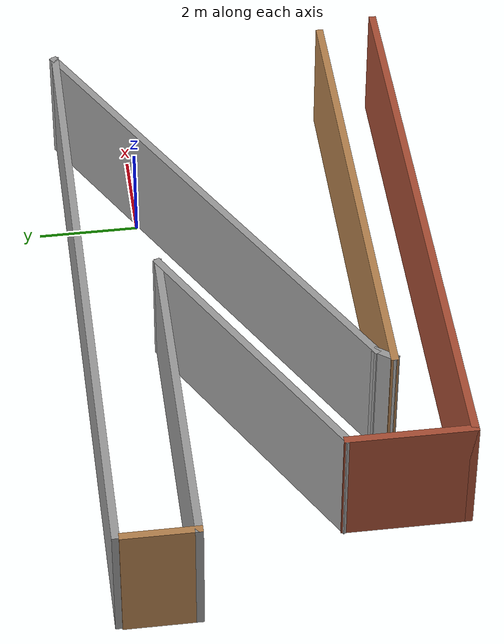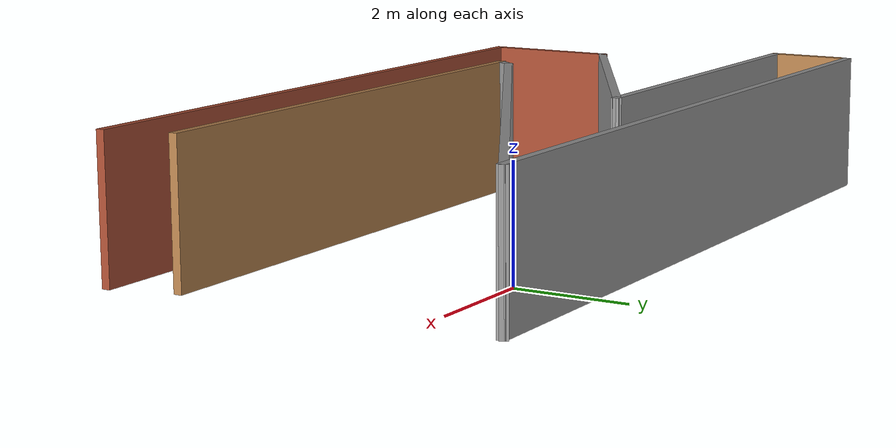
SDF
<?xml version='1.0'?>
<sdf version='1.6'>
  <model name='Z'>
    <pose frame=''>-3.66701 -1.98202 0 0 -0 0</pose>
    <link name='Wall_29'>
      <collision name='Wall_29_Collision'>
        <geometry>
          <box>
            <size>10.75 0.15 2.5</size>
          </box>
        </geometry>
        <pose frame=''>0 0 1.25 0 -0 0</pose>
      </collision>
      <visual name='Wall_29_Visual'>
        <pose frame=''>0 0 1.25 0 -0 0</pose>
        <geometry>
          <box>
            <size>10.75 0.15 2.5</size>
          </box>
        </geometry>
        <material>
          <script>
            <uri>file://media/materials/scripts/gazebo.material</uri>
            <name>Gazebo/Grey</name>
          </script>
          <ambient>1 1 1 1</ambient>
        </material>
      </visual>
      <pose frame=''>1.73324 0.721531 0 0 -0 0.523599</pose>
    </link>
    <link name='Wall_31'>
      <collision name='Wall_31_Collision'>
        <geometry>
          <box>
            <size>13.25 0.15 2.5</size>
          </box>
        </geometry>
        <pose frame=''>0 0 1.25 0 -0 0</pose>
      </collision>
      <visual name='Wall_31_Visual'>
        <pose frame=''>0 0 1.25 0 -0 0</pose>
        <geometry>
          <box>
            <size>13.25 0.15 2.5</size>
          </box>
        </geometry>
        <material>
          <script>
            <uri>file://media/materials/scripts/gazebo.material</uri>
            <name>Gazebo/Grey</name>
          </script>
          <ambient>1 1 1 1</ambient>
        </material>
      </visual>
      <pose frame=''>-0.238681 3.3571 0 0 -0 3.14159</pose>
    </link>
    <link name='Wall_34'>
      <collision name='Wall_34_Collision'>
        <geometry>
          <box>
            <size>9.75 0.15 2.5</size>
          </box>
        </geometry>
        <pose frame=''>0 0 1.25 0 -0 0</pose>
      </collision>
      <visual name='Wall_34_Visual'>
        <pose frame=''>0 0 1.25 0 -0 0</pose>
        <geometry>
          <box>
            <size>9.75 0.15 2.5</size>
          </box>
        </geometry>
        <material>
          <script>
            <uri>file://media/materials/scripts/gazebo.material</uri>
            <name>Gazebo/Wood</name>
          </script>
          <ambient>1 1 1 1</ambient>
        </material>
      </visual>
      <pose frame=''>1.72401 -2.22898 0 0 -0 3.14159</pose>
    </link>
    <link name='Wall_35'>
      <collision name='Wall_35_Collision'>
        <geometry>
          <box>
            <size>0.521928 0.15 2.5</size>
          </box>
        </geometry>
        <pose frame=''>0 0 1.25 0 -0 0</pose>
      </collision>
      <visual name='Wall_35_Visual'>
        <pose frame=''>0 0 1.25 0 -0 0</pose>
        <geometry>
          <box>
            <size>0.521928 0.15 2.5</size>
          </box>
        </geometry>
        <material>
          <script>
            <uri>file://media/materials/scripts/gazebo.material</uri>
            <name>Gazebo/Grey</name>
          </script>
          <ambient>1 1 1 1</ambient>
        </material>
      </visual>
      <pose frame=''>-2.96634 -2.07873 0 0 -0 0.940389</pose>
    </link>
    <link name='Wall_37'>
      <collision name='Wall_37_Collision'>
        <geometry>
          <box>
            <size>12 0.15 2.5</size>
          </box>
        </geometry>
        <pose frame=''>0 0 1.25 0 -0 0</pose>
      </collision>
      <visual name='Wall_37_Visual'>
        <pose frame=''>0 0 1.25 0 -0 0</pose>
        <geometry>
          <box>
            <size>12 0.15 2.5</size>
          </box>
        </geometry>
        <material>
          <script>
            <uri>file://media/materials/scripts/gazebo.material</uri>
            <name>Gazebo/Bricks</name>
          </script>
          <ambient>1 1 1 1</ambient>
        </material>
      </visual>
      <pose frame=''>0.892012 -3.39898 0 0 -0 3.14159</pose>
    </link>
    <link name='Wall_38'>
      <collision name='Wall_38_Collision'>
        <geometry>
          <box>
            <size>2.5 0.15 2.5</size>
          </box>
        </geometry>
        <pose frame=''>0 0 1.25 0 -0 0</pose>
      </collision>
      <visual name='Wall_38_Visual'>
        <pose frame=''>0 0 1.25 0 -0 0</pose>
        <geometry>
          <box>
            <size>2.5 0.15 2.5</size>
          </box>
        </geometry>
        <material>
          <script>
            <uri>file://media/materials/scripts/gazebo.material</uri>
            <name>Gazebo/Bricks</name>
          </script>
          <ambient>1 1 1 1</ambient>
        </material>
      </visual>
      <pose frame=''>-5.03299 -2.22398 0 0 -0 1.5708</pose>
    </link>
    <link name='Wall_39'>
      <collision name='Wall_39_Collision'>
        <geometry>
          <box>
            <size>6 0.15 2.5</size>
          </box>
        </geometry>
        <pose frame=''>0 0 1.25 0 -0 0</pose>
      </collision>
      <visual name='Wall_39_Visual'>
        <pose frame=''>0 0 1.25 0 -0 0</pose>
        <geometry>
          <box>
            <size>6 0.15 2.5</size>
          </box>
        </geometry>
        <material>
          <script>
            <uri>file://media/materials/scripts/gazebo.material</uri>
            <name>Gazebo/Grey</name>
          </script>
          <ambient>1 1 1 1</ambient>
        </material>
      </visual>
      <pose frame=''>-2.50001 0.41333 0 0 -0 0.523568</pose>
    </link>
    <link name='Wall_40'>
      <collision name='Wall_40_Collision'>
        <geometry>
          <box>
            <size>7 0.15 2.5</size>
          </box>
        </geometry>
        <pose frame=''>0 0 1.25 0 -0 0</pose>
      </collision>
      <visual name='Wall_40_Visual'>
        <pose frame=''>0 0 1.25 0 -0 0</pose>
        <geometry>
          <box>
            <size>7 0.15 2.5</size>
          </box>
        </geometry>
        <material>
          <script>
            <uri>file://media/materials/scripts/gazebo.material</uri>
            <name>Gazebo/Grey</name>
          </script>
          <ambient>1 1 1 1</ambient>
        </material>
      </visual>
      <pose frame=''>-3.39201 1.87583 0 0 -0 3.14154</pose>
    </link>
    <link name='Wall_41'>
      <collision name='Wall_41_Collision'>
        <geometry>
          <box>
            <size>1.5 0.15 2.5</size>
          </box>
        </geometry>
        <pose frame=''>0 0 1.25 0 -0 0</pose>
      </collision>
      <visual name='Wall_41_Visual'>
        <pose frame=''>0 0 1.25 0 -0 0</pose>
        <geometry>
          <box>
            <size>1.5 0.15 2.5</size>
          </box>
        </geometry>
        <material>
          <script>
            <uri>file://media/materials/scripts/gazebo.material</uri>
            <name>Gazebo/Wood</name>
          </script>
          <ambient>1 1 1 1</ambient>
        </material>
      </visual>
      <pose frame=''>-6.81699 2.55102 0 0 -0 1.5708</pose>
    </link>
    <static>1</static>
  </model>
</sdf>
